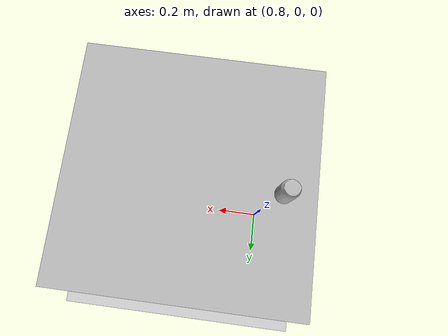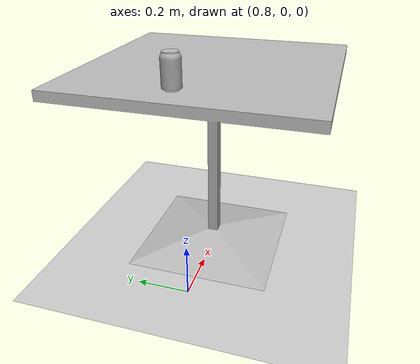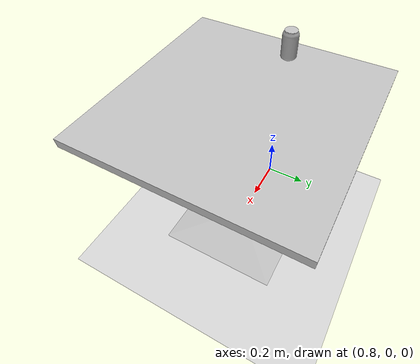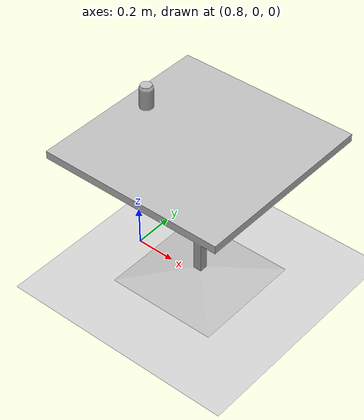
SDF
<sdf version="1.6">
 <world name="default">
  <light name="sun" type="directional">
   <pose>0 0 10 0 -0 0</pose>
   <diffuse>0.8 0.8 0.8 1</diffuse>
   <specular>0.2 0.2 0.2 1</specular>
   <attenuation>
    <range>1000</range>
    <constant>0.9</constant>
    <linear>0.01</linear>
    <quadratic>0.001</quadratic>
   </attenuation>
   <direction>-0.5 0.1 -0.9</direction>
  </light>
  <model name="ground_plane">
   <static>1</static>
   <link name="link">
    <collision name="collision">
     <geometry><plane><normal>0 0 1</normal><size>100 100</size></plane></geometry>
     <surface>
      <contact><collide_bitmask>65535</collide_bitmask></contact>
      <friction><ode><mu>100</mu><mu2>50</mu2></ode></friction>
     </surface>
    </collision>
    <visual name="visual">
     <cast_shadows>0</cast_shadows>
     <geometry><plane><normal>0 0 1</normal><size>100 100</size></plane></geometry>
     <material>
      <script><uri>file://media/materials/scripts/gazebo.material</uri><name>Gazebo/Grey</name></script>
     </material>
    </visual>
   </link>
  </model>
  <gravity>0 0 -9.8</gravity>
  <magnetic_field>6e-06 2.3e-05 -4.2e-05</magnetic_field>
  <atmosphere type="adiabatic"/>
  <physics name="default_physics" default="0" type="ode">
   <max_step_size>0.001</max_step_size>
   <real_time_factor>1</real_time_factor>
   <real_time_update_rate>1000</real_time_update_rate>
  </physics>
  <scene><ambient>0.4 0.4 0.4 1</ambient><background>0.7 0.7 0.7 1</background><shadows>1</shadows></scene>
  <audio><device>default</device></audio>
  <spherical_coordinates>
   <surface_model>EARTH_WGS84</surface_model>
   <latitude_deg>0</latitude_deg>
   <longitude_deg>0</longitude_deg>
   <elevation>0</elevation>
   <heading_deg>0</heading_deg>
  </spherical_coordinates>
  <model name="cafe_table">
   <static>1</static>
   <link name="link">
    <collision name="surface">
     <pose>0 0 0.755 0 -0 0</pose>
     <geometry><box><size>0.913 0.913 0.04</size></box></geometry>
    </collision>
    <collision name="column">
     <pose>0 0 0.37 0 -0 0</pose>
     <geometry><box><size>0.042 0.042 0.74</size></box></geometry>
    </collision>
    <collision name="base">
     <pose>0 0 0.02 0 -0 0</pose>
     <geometry><box><size>0.56 0.56 0.04</size></box></geometry>
    </collision>
    <visual name="visual">
     <geometry><mesh><uri>model://cafe_table/meshes/cafe_table.dae</uri></mesh></geometry>
    </visual>
   </link>
   <pose>1.16495 0.006428 0 0 -0 0</pose>
  </model>
  <model name="coke_can">
   <link name="link">
    <inertial>
     <pose>0 0 0.06 0 -0 0</pose>
     <mass>0.39</mass>
     <inertia>
      <ixx>0.00055575</ixx>
      <ixy>0</ixy>
      <ixz>0</ixz>
      <iyy>0.00055575</iyy>
      <iyz>0</iyz>
      <izz>0.0001755</izz>
     </inertia>
    </inertial>
    <collision name="collision">
     <pose>0.003937 0.004724 -0.18 0 -0 0</pose>
     <geometry><mesh><uri>model://coke_can/meshes/coke_can.dae</uri></mesh></geometry>
     <surface>
      <friction><ode><mu>1</mu><mu2>1</mu2></ode></friction>
      <contact><ode><kp>1e+07</kp><kd>1</kd><min_depth>0.001</min_depth><max_vel>0.1</max_vel></ode></contact>
     </surface>
    </collision>
    <visual name="visual">
     <pose>0.003937 0.004724 -0.18 0 -0 0</pose>
     <geometry><mesh><uri>model://coke_can/meshes/coke_can.dae</uri></mesh></geometry>
    </visual>
   </link>
   <pose>0.830342 0.043729 0.772434 -0.011209 0.004016 0.001831</pose>
  </model>
 </world>
</sdf>
